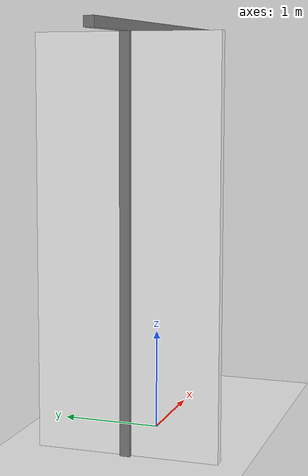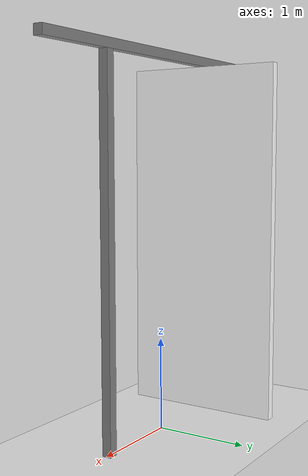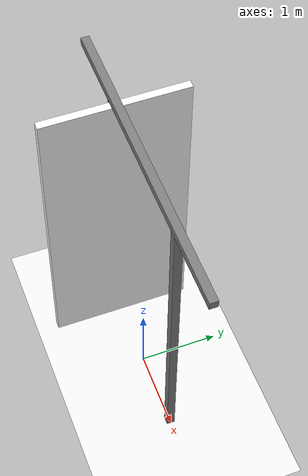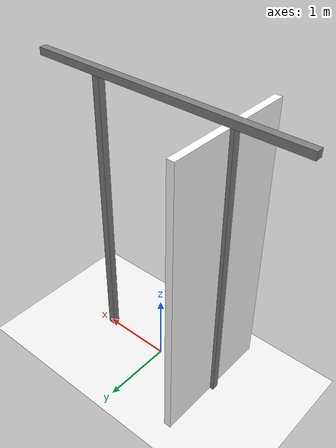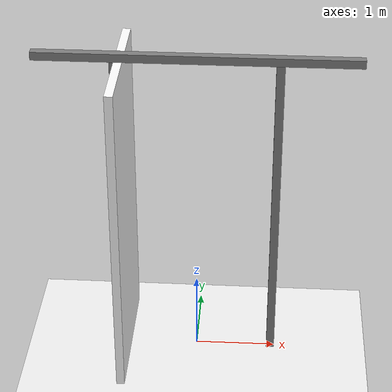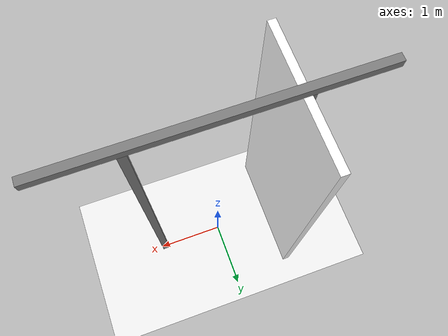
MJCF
<mujoco>
    <worldbody>
        <light diffuse="1 1 1" pos="0 0 10" dir="0 0 -1"/>

        <!-- Ground plane with a neutral color -->
        <geom type="plane" size="10 10 0.05" rgba="0.95 0.95 0.95 1"/>

        <!-- Door frame as a static object -->
        <!-- Left frame -->
        <geom type="box" size="0.05 0.05 2" rgba="0.5 0.5 0.5 1" pos="-0.95 0 2"/>
        <!-- Right frame -->
        <geom type="box" size="0.05 0.05 2" rgba="0.5 0.5 0.5 1" pos="0.95 0 2"/>
        <!-- Top frame -->
        <geom type="box" size="1.9 0.05 0.05" rgba="0.5 0.5 0.5 1" pos="0 0 4.05"/>

        <!-- Door defined with a hinge joint -->
        <body name="door_body" pos="-0.9 0 2">
            <geom type="box" size="0.05 0.9 2" rgba="1 1 1 1"/>
            <joint name="door_hinge" type="hinge" axis="0 0 1" pos="0.9 0 0" range="-90 0"/>
        </body>

    </worldbody>

    <actuator>
        <position joint="door_hinge" kp="500"/>
    </actuator>
</mujoco>
